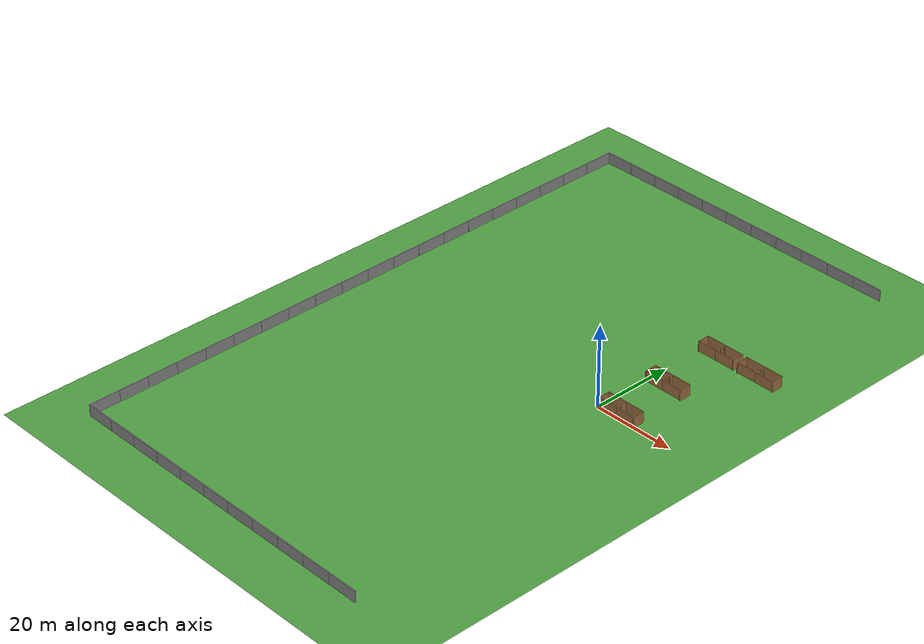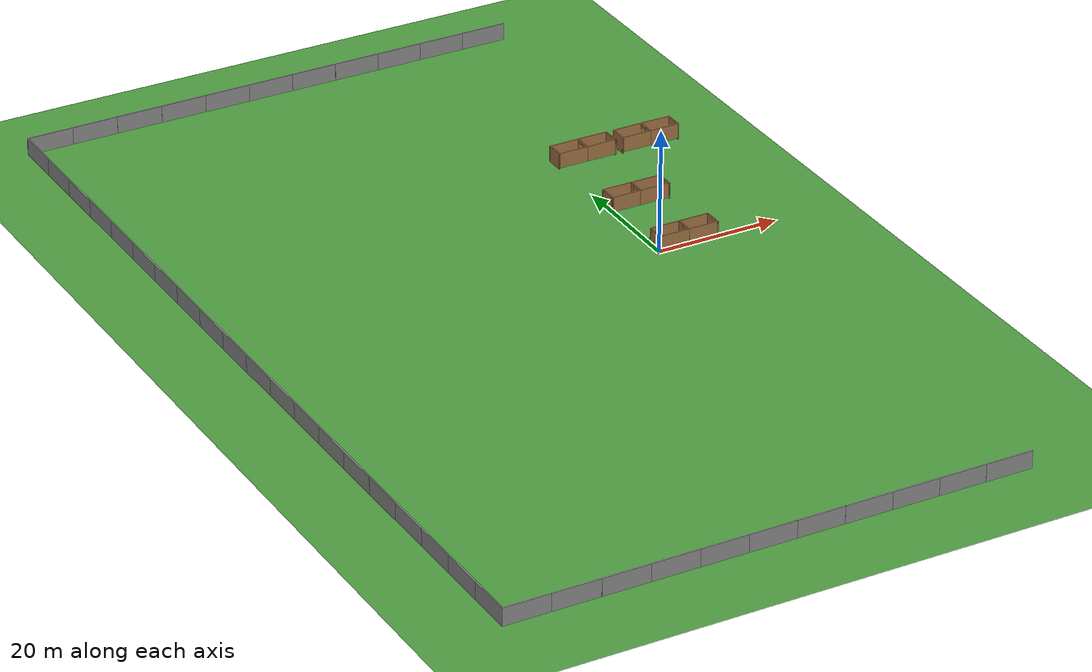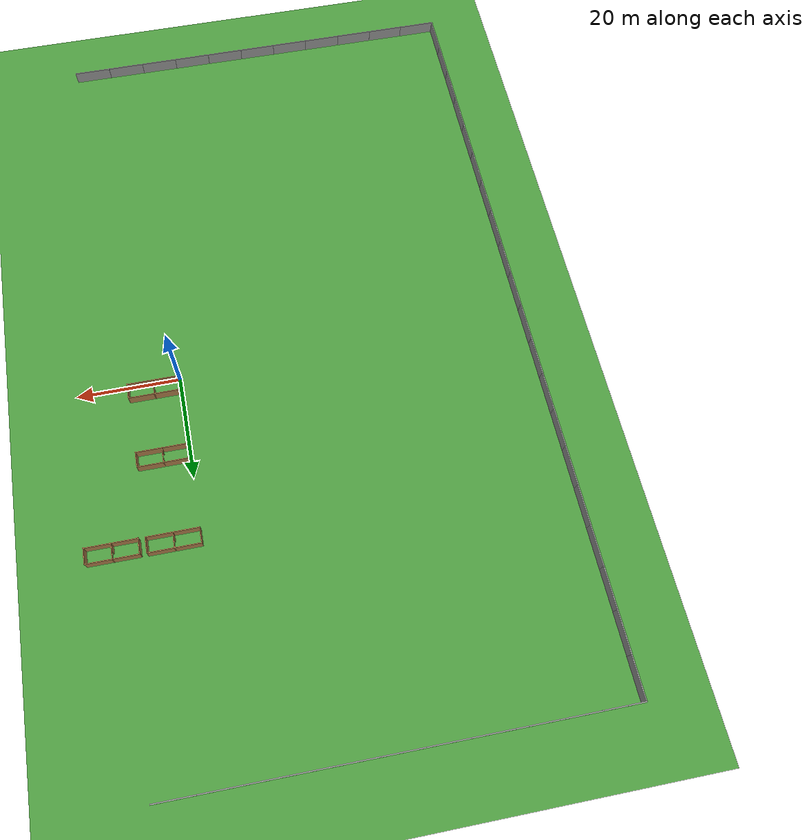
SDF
<sdf version="1.6">
 <world name="default">
  <model name="vrc_driving_terrain">
   <static>1</static>
   <link name="grass_plane">
    <collision name="collision">
     <geometry><plane><normal>0 0 1</normal><size>150 150</size></plane></geometry>
     <surface><friction><ode><mu>0.5</mu><mu2>0.5</mu2></ode></friction></surface>
    </collision>
    <visual name="visual_0">
     <cast_shadows>0</cast_shadows>
     <geometry><plane><normal>0 0 1</normal><size>150 150</size></plane></geometry>
     <material>
      <script>
       <uri>model://forest/vrc_driving_terrain/materials/scripts</uri>
       <uri>model://forest/vrc_driving_terrain/materials/textures</uri>
       <name>vrc/grass</name>
      </script>
     </material>
    </visual>
   </link>
   <pose>6.27224 -2.36963 0 0 -0 0</pose>
  </model>
  <model name="grey_wall_clone_10_clone_clone_clone_11_clone">
   <static>1</static>
   <link name="link">
    <pose>0 0 1.4 0 -0 0</pose>
    <collision name="collision"><geometry><box><size>7.5 0.2 2.8</size></box></geometry></collision>
    <visual name="visual">
     <cast_shadows>0</cast_shadows>
     <geometry><box><size>7.5 0.2 2.8</size></box></geometry>
     <material>
      <script>
       <uri>model://forest/grey_wall/materials/scripts</uri>
       <uri>model://forest/grey_wall/materials/textures</uri>
       <name>vrc/grey_wall</name>
      </script>
     </material>
    </visual>
   </link>
   <pose>-64.823 -77.1867 0 0 -0 0</pose>
  </model>
  <model name="grey_wall_clone_10_clone_clone_clone_11_clone_clone">
   <static>1</static>
   <link name="link">
    <pose>0 0 1.4 0 -0 0</pose>
    <collision name="collision"><geometry><box><size>7.5 0.2 2.8</size></box></geometry></collision>
    <visual name="visual">
     <cast_shadows>0</cast_shadows>
     <geometry><box><size>7.5 0.2 2.8</size></box></geometry>
     <material>
      <script>
       <uri>model://forest/grey_wall/materials/scripts</uri>
       <uri>model://forest/grey_wall/materials/textures</uri>
       <name>vrc/grey_wall</name>
      </script>
     </material>
    </visual>
   </link>
   <pose>-57.5346 -77.2024 0 0 -0 0</pose>
  </model>
  <model name="grey_wall_clone_10_clone_clone_clone_11_clone_clone_0">
   <static>1</static>
   <link name="link">
    <pose>0 0 1.4 0 -0 0</pose>
    <collision name="collision"><geometry><box><size>7.5 0.2 2.8</size></box></geometry></collision>
    <visual name="visual">
     <cast_shadows>0</cast_shadows>
     <geometry><box><size>7.5 0.2 2.8</size></box></geometry>
     <material>
      <script>
       <uri>model://forest/grey_wall/materials/scripts</uri>
       <uri>model://forest/grey_wall/materials/textures</uri>
       <name>vrc/grey_wall</name>
      </script>
     </material>
    </visual>
   </link>
   <pose>-50.026 -77.2083 0 0 -0 0</pose>
  </model>
  <model name="grey_wall_clone_10_clone_clone_clone_11_clone_clone_1">
   <static>1</static>
   <link name="link">
    <pose>0 0 1.4 0 -0 0</pose>
    <collision name="collision"><geometry><box><size>7.5 0.2 2.8</size></box></geometry></collision>
    <visual name="visual">
     <cast_shadows>0</cast_shadows>
     <geometry><box><size>7.5 0.2 2.8</size></box></geometry>
     <material>
      <script>
       <uri>model://forest/grey_wall/materials/scripts</uri>
       <uri>model://forest/grey_wall/materials/textures</uri>
       <name>vrc/grey_wall</name>
      </script>
     </material>
    </visual>
   </link>
   <pose>-42.5276 -77.1982 0 0 -0 0</pose>
  </model>
  <model name="grey_wall_clone_10_clone_clone_clone_11_clone_clone_2">
   <static>1</static>
   <link name="link">
    <pose>0 0 1.4 0 -0 0</pose>
    <collision name="collision"><geometry><box><size>7.5 0.2 2.8</size></box></geometry></collision>
    <visual name="visual">
     <cast_shadows>0</cast_shadows>
     <geometry><box><size>7.5 0.2 2.8</size></box></geometry>
     <material>
      <script>
       <uri>model://forest/grey_wall/materials/scripts</uri>
       <uri>model://forest/grey_wall/materials/textures</uri>
       <name>vrc/grey_wall</name>
      </script>
     </material>
    </visual>
   </link>
   <pose>-35.0175 -77.2078 0 0 -0 0</pose>
  </model>
  <model name="grey_wall_clone_10_clone_clone_clone_11_clone_clone_3">
   <static>1</static>
   <link name="link">
    <pose>0 0 1.4 0 -0 0</pose>
    <collision name="collision"><geometry><box><size>7.5 0.2 2.8</size></box></geometry></collision>
    <visual name="visual">
     <cast_shadows>0</cast_shadows>
     <geometry><box><size>7.5 0.2 2.8</size></box></geometry>
     <material>
      <script>
       <uri>model://forest/grey_wall/materials/scripts</uri>
       <uri>model://forest/grey_wall/materials/textures</uri>
       <name>vrc/grey_wall</name>
      </script>
     </material>
    </visual>
   </link>
   <pose>-27.5544 -77.2087 0 0 -0 0</pose>
  </model>
  <model name="grey_wall_clone_10_clone_clone_clone_11_clone_clone_4">
   <static>1</static>
   <link name="link">
    <pose>0 0 1.4 0 -0 0</pose>
    <collision name="collision"><geometry><box><size>7.5 0.2 2.8</size></box></geometry></collision>
    <visual name="visual">
     <cast_shadows>0</cast_shadows>
     <geometry><box><size>7.5 0.2 2.8</size></box></geometry>
     <material>
      <script>
       <uri>model://forest/grey_wall/materials/scripts</uri>
       <uri>model://forest/grey_wall/materials/textures</uri>
       <name>vrc/grey_wall</name>
      </script>
     </material>
    </visual>
   </link>
   <pose>-20.0557 -77.2142 0 0 -0 0</pose>
  </model>
  <model name="grey_wall_clone_10_clone_clone_clone_11_clone_clone_5">
   <static>1</static>
   <link name="link">
    <pose>0 0 1.4 0 -0 0</pose>
    <collision name="collision"><geometry><box><size>7.5 0.2 2.8</size></box></geometry></collision>
    <visual name="visual">
     <cast_shadows>0</cast_shadows>
     <geometry><box><size>7.5 0.2 2.8</size></box></geometry>
     <material>
      <script>
       <uri>model://forest/grey_wall/materials/scripts</uri>
       <uri>model://forest/grey_wall/materials/textures</uri>
       <name>vrc/grey_wall</name>
      </script>
     </material>
    </visual>
   </link>
   <pose>-12.5467 -77.224 0 0 -0 0</pose>
  </model>
  <model name="grey_wall_clone_10_clone_clone_clone_11_clone_clone_6">
   <static>1</static>
   <link name="link">
    <pose>0 0 1.4 0 -0 0</pose>
    <collision name="collision"><geometry><box><size>7.5 0.2 2.8</size></box></geometry></collision>
    <visual name="visual">
     <cast_shadows>0</cast_shadows>
     <geometry><box><size>7.5 0.2 2.8</size></box></geometry>
     <material>
      <script>
       <uri>model://forest/grey_wall/materials/scripts</uri>
       <uri>model://forest/grey_wall/materials/textures</uri>
       <name>vrc/grey_wall</name>
      </script>
     </material>
    </visual>
   </link>
   <pose>-5.04952 -77.2253 0 0 -0 0</pose>
  </model>
  <model name="grey_wall_clone_10_clone_clone_clone_11_clone_clone_7">
   <static>1</static>
   <link name="link">
    <pose>0 0 1.4 0 -0 0</pose>
    <collision name="collision"><geometry><box><size>7.5 0.2 2.8</size></box></geometry></collision>
    <visual name="visual">
     <cast_shadows>0</cast_shadows>
     <geometry><box><size>7.5 0.2 2.8</size></box></geometry>
     <material>
      <script>
       <uri>model://forest/grey_wall/materials/scripts</uri>
       <uri>model://forest/grey_wall/materials/textures</uri>
       <name>vrc/grey_wall</name>
      </script>
     </material>
    </visual>
   </link>
   <pose>2.45064 -77.2385 0 0 -0 0</pose>
  </model>
  <model name="grey_wall_clone_10_clone_clone_clone_11_clone_clone_8">
   <static>1</static>
   <link name="link">
    <pose>0 0 1.4 0 -0 0</pose>
    <collision name="collision"><geometry><box><size>7.5 0.2 2.8</size></box></geometry></collision>
    <visual name="visual">
     <cast_shadows>0</cast_shadows>
     <geometry><box><size>7.5 0.2 2.8</size></box></geometry>
     <material>
      <script>
       <uri>model://forest/grey_wall/materials/scripts</uri>
       <uri>model://forest/grey_wall/materials/textures</uri>
       <name>vrc/grey_wall</name>
      </script>
     </material>
    </visual>
   </link>
   <pose>9.9578 -77.2456 0 0 -0 0</pose>
  </model>
  <model name="grey_wall_clone_10_clone_clone_9">
   <static>1</static>
   <link name="link">
    <pose>0 0 1.4 0 -0 0</pose>
    <collision name="collision"><geometry><box><size>7.5 0.2 2.8</size></box></geometry></collision>
    <visual name="visual">
     <cast_shadows>0</cast_shadows>
     <geometry><box><size>7.5 0.2 2.8</size></box></geometry>
     <material>
      <script>
       <uri>model://forest/grey_wall/materials/scripts</uri>
       <uri>model://forest/grey_wall/materials/textures</uri>
       <name>vrc/grey_wall</name>
      </script>
     </material>
    </visual>
   </link>
   <pose>9.8792 72.6386 0 0 -0 0</pose>
  </model>
  <model name="grey_wall_clone_10_clone_clone_10">
   <static>1</static>
   <link name="link">
    <pose>0 0 1.4 0 -0 0</pose>
    <collision name="collision"><geometry><box><size>7.5 0.2 2.8</size></box></geometry></collision>
    <visual name="visual">
     <cast_shadows>0</cast_shadows>
     <geometry><box><size>7.5 0.2 2.8</size></box></geometry>
     <material>
      <script>
       <uri>model://forest/grey_wall/materials/scripts</uri>
       <uri>model://forest/grey_wall/materials/textures</uri>
       <name>vrc/grey_wall</name>
      </script>
     </material>
    </visual>
   </link>
   <pose>2.37975 72.635 0 0 -0 0</pose>
  </model>
  <model name="grey_wall_clone_10_clone_clone_11">
   <static>1</static>
   <link name="link">
    <pose>0 0 1.4 0 -0 0</pose>
    <collision name="collision"><geometry><box><size>7.5 0.2 2.8</size></box></geometry></collision>
    <visual name="visual">
     <cast_shadows>0</cast_shadows>
     <geometry><box><size>7.5 0.2 2.8</size></box></geometry>
     <material>
      <script>
       <uri>model://forest/grey_wall/materials/scripts</uri>
       <uri>model://forest/grey_wall/materials/textures</uri>
       <name>vrc/grey_wall</name>
      </script>
     </material>
    </visual>
   </link>
   <pose>-5.09788 72.6331 0 0 -0 0</pose>
  </model>
  <model name="grey_wall_clone_10_clone_clone_12">
   <static>1</static>
   <link name="link">
    <pose>0 0 1.4 0 -0 0</pose>
    <collision name="collision"><geometry><box><size>7.5 0.2 2.8</size></box></geometry></collision>
    <visual name="visual">
     <cast_shadows>0</cast_shadows>
     <geometry><box><size>7.5 0.2 2.8</size></box></geometry>
     <material>
      <script>
       <uri>model://forest/grey_wall/materials/scripts</uri>
       <uri>model://forest/grey_wall/materials/textures</uri>
       <name>vrc/grey_wall</name>
      </script>
     </material>
    </visual>
   </link>
   <pose>-12.6061 72.6425 0 0 -0 0</pose>
  </model>
  <model name="grey_wall_clone_10_clone_clone_13">
   <static>1</static>
   <link name="link">
    <pose>0 0 1.4 0 -0 0</pose>
    <collision name="collision"><geometry><box><size>7.5 0.2 2.8</size></box></geometry></collision>
    <visual name="visual">
     <cast_shadows>0</cast_shadows>
     <geometry><box><size>7.5 0.2 2.8</size></box></geometry>
     <material>
      <script>
       <uri>model://forest/grey_wall/materials/scripts</uri>
       <uri>model://forest/grey_wall/materials/textures</uri>
       <name>vrc/grey_wall</name>
      </script>
     </material>
    </visual>
   </link>
   <pose>-20.1193 72.6527 0 0 -0 0</pose>
  </model>
  <model name="grey_wall_clone_10_clone_clone_14">
   <static>1</static>
   <link name="link">
    <pose>0 0 1.4 0 -0 0</pose>
    <collision name="collision"><geometry><box><size>7.5 0.2 2.8</size></box></geometry></collision>
    <visual name="visual">
     <cast_shadows>0</cast_shadows>
     <geometry><box><size>7.5 0.2 2.8</size></box></geometry>
     <material>
      <script>
       <uri>model://forest/grey_wall/materials/scripts</uri>
       <uri>model://forest/grey_wall/materials/textures</uri>
       <name>vrc/grey_wall</name>
      </script>
     </material>
    </visual>
   </link>
   <pose>-27.6199 72.6558 0 0 -0 0</pose>
  </model>
  <model name="grey_wall_clone_10_clone_clone_15">
   <static>1</static>
   <link name="link">
    <pose>0 0 1.4 0 -0 0</pose>
    <collision name="collision"><geometry><box><size>7.5 0.2 2.8</size></box></geometry></collision>
    <visual name="visual">
     <cast_shadows>0</cast_shadows>
     <geometry><box><size>7.5 0.2 2.8</size></box></geometry>
     <material>
      <script>
       <uri>model://forest/grey_wall/materials/scripts</uri>
       <uri>model://forest/grey_wall/materials/textures</uri>
       <name>vrc/grey_wall</name>
      </script>
     </material>
    </visual>
   </link>
   <pose>-35.1125 72.6503 0 0 -0 0</pose>
  </model>
  <model name="grey_wall_clone_10_clone_clone_16">
   <static>1</static>
   <link name="link">
    <pose>0 0 1.4 0 -0 0</pose>
    <collision name="collision"><geometry><box><size>7.5 0.2 2.8</size></box></geometry></collision>
    <visual name="visual">
     <cast_shadows>0</cast_shadows>
     <geometry><box><size>7.5 0.2 2.8</size></box></geometry>
     <material>
      <script>
       <uri>model://forest/grey_wall/materials/scripts</uri>
       <uri>model://forest/grey_wall/materials/textures</uri>
       <name>vrc/grey_wall</name>
      </script>
     </material>
    </visual>
   </link>
   <pose>-42.606 72.6465 0 0 -0 0</pose>
  </model>
  <model name="grey_wall_clone_10_clone_clone_17">
   <static>1</static>
   <link name="link">
    <pose>0 0 1.4 0 -0 0</pose>
    <collision name="collision"><geometry><box><size>7.5 0.2 2.8</size></box></geometry></collision>
    <visual name="visual">
     <cast_shadows>0</cast_shadows>
     <geometry><box><size>7.5 0.2 2.8</size></box></geometry>
     <material>
      <script>
       <uri>model://forest/grey_wall/materials/scripts</uri>
       <uri>model://forest/grey_wall/materials/textures</uri>
       <name>vrc/grey_wall</name>
      </script>
     </material>
    </visual>
   </link>
   <pose>-50.1127 72.6522 0 0 -0 0</pose>
  </model>
  <model name="grey_wall_clone_10_clone_clone_18">
   <static>1</static>
   <link name="link">
    <pose>0 0 1.4 0 -0 0</pose>
    <collision name="collision"><geometry><box><size>7.5 0.2 2.8</size></box></geometry></collision>
    <visual name="visual">
     <cast_shadows>0</cast_shadows>
     <geometry><box><size>7.5 0.2 2.8</size></box></geometry>
     <material>
      <script>
       <uri>model://forest/grey_wall/materials/scripts</uri>
       <uri>model://forest/grey_wall/materials/textures</uri>
       <name>vrc/grey_wall</name>
      </script>
     </material>
    </visual>
   </link>
   <pose>-57.6217 72.6499 0 0 -0 0</pose>
  </model>
  <model name="grey_wall_clone_10_clone_clone_19">
   <static>1</static>
   <link name="link">
    <pose>0 0 1.4 0 -0 0</pose>
    <collision name="collision"><geometry><box><size>7.5 0.2 2.8</size></box></geometry></collision>
    <visual name="visual">
     <cast_shadows>0</cast_shadows>
     <geometry><box><size>7.5 0.2 2.8</size></box></geometry>
     <material>
      <script>
       <uri>model://forest/grey_wall/materials/scripts</uri>
       <uri>model://forest/grey_wall/materials/textures</uri>
       <name>vrc/grey_wall</name>
      </script>
     </material>
    </visual>
   </link>
   <pose>-65.1107 72.6364 0 0 -0 0</pose>
  </model>
  <model name="grey_wall_clone_10_clone_0_clone_5_clone_12_clone">
   <static>1</static>
   <link name="link">
    <pose>0 0 1.4 0 -0 0</pose>
    <collision name="collision"><geometry><box><size>7.5 0.2 2.8</size></box></geometry></collision>
    <visual name="visual">
     <cast_shadows>0</cast_shadows>
     <geometry><box><size>7.5 0.2 2.8</size></box></geometry>
     <material>
      <script>
       <uri>model://forest/grey_wall/materials/scripts</uri>
       <uri>model://forest/grey_wall/materials/textures</uri>
       <name>vrc/grey_wall</name>
      </script>
     </material>
    </visual>
   </link>
   <pose>-68.7572 68.7982 0 0 0 -1.56932</pose>
  </model>
  <model name="grey_wall_clone_10_clone_0_clone_5_clone_12_clone_0">
   <static>1</static>
   <link name="link">
    <pose>0 0 1.4 0 -0 0</pose>
    <collision name="collision"><geometry><box><size>7.5 0.2 2.8</size></box></geometry></collision>
    <visual name="visual">
     <cast_shadows>0</cast_shadows>
     <geometry><box><size>7.5 0.2 2.8</size></box></geometry>
     <material>
      <script>
       <uri>model://forest/grey_wall/materials/scripts</uri>
       <uri>model://forest/grey_wall/materials/textures</uri>
       <name>vrc/grey_wall</name>
      </script>
     </material>
    </visual>
   </link>
   <pose>-68.7575 61.2964 0 0 0 -1.56932</pose>
  </model>
  <model name="grey_wall_clone_10_clone_0_clone_5_clone_12_clone_1">
   <static>1</static>
   <link name="link">
    <pose>0 0 1.4 0 -0 0</pose>
    <collision name="collision"><geometry><box><size>7.5 0.2 2.8</size></box></geometry></collision>
    <visual name="visual">
     <cast_shadows>0</cast_shadows>
     <geometry><box><size>7.5 0.2 2.8</size></box></geometry>
     <material>
      <script>
       <uri>model://forest/grey_wall/materials/scripts</uri>
       <uri>model://forest/grey_wall/materials/textures</uri>
       <name>vrc/grey_wall</name>
      </script>
     </material>
    </visual>
   </link>
   <pose>-68.7526 53.7973 0 0 0 -1.56932</pose>
  </model>
  <model name="grey_wall_clone_10_clone_0_clone_5_clone_12_clone_2">
   <static>1</static>
   <link name="link">
    <pose>0 0 1.4 0 -0 0</pose>
    <collision name="collision"><geometry><box><size>7.5 0.2 2.8</size></box></geometry></collision>
    <visual name="visual">
     <cast_shadows>0</cast_shadows>
     <geometry><box><size>7.5 0.2 2.8</size></box></geometry>
     <material>
      <script>
       <uri>model://forest/grey_wall/materials/scripts</uri>
       <uri>model://forest/grey_wall/materials/textures</uri>
       <name>vrc/grey_wall</name>
      </script>
     </material>
    </visual>
   </link>
   <pose>-68.7342 46.3034 0 0 0 -1.56932</pose>
  </model>
  <model name="grey_wall_clone_10_clone_0_clone_5_clone_12_clone_3">
   <static>1</static>
   <link name="link">
    <pose>0 0 1.4 0 -0 0</pose>
    <collision name="collision"><geometry><box><size>7.5 0.2 2.8</size></box></geometry></collision>
    <visual name="visual">
     <cast_shadows>0</cast_shadows>
     <geometry><box><size>7.5 0.2 2.8</size></box></geometry>
     <material>
      <script>
       <uri>model://forest/grey_wall/materials/scripts</uri>
       <uri>model://forest/grey_wall/materials/textures</uri>
       <name>vrc/grey_wall</name>
      </script>
     </material>
    </visual>
   </link>
   <pose>-68.7287 38.8101 0 0 0 -1.56932</pose>
  </model>
  <model name="grey_wall_clone_10_clone_0_clone_5_clone_12_clone_4">
   <static>1</static>
   <link name="link">
    <pose>0 0 1.4 0 -0 0</pose>
    <collision name="collision"><geometry><box><size>7.5 0.2 2.8</size></box></geometry></collision>
    <visual name="visual">
     <cast_shadows>0</cast_shadows>
     <geometry><box><size>7.5 0.2 2.8</size></box></geometry>
     <material>
      <script>
       <uri>model://forest/grey_wall/materials/scripts</uri>
       <uri>model://forest/grey_wall/materials/textures</uri>
       <name>vrc/grey_wall</name>
      </script>
     </material>
    </visual>
   </link>
   <pose>-68.7201 31.3023 0 0 0 -1.56932</pose>
  </model>
  <model name="grey_wall_clone_10_clone_0_clone_5_clone_12_clone_5">
   <static>1</static>
   <link name="link">
    <pose>0 0 1.4 0 -0 0</pose>
    <collision name="collision"><geometry><box><size>7.5 0.2 2.8</size></box></geometry></collision>
    <visual name="visual">
     <cast_shadows>0</cast_shadows>
     <geometry><box><size>7.5 0.2 2.8</size></box></geometry>
     <material>
      <script>
       <uri>model://forest/grey_wall/materials/scripts</uri>
       <uri>model://forest/grey_wall/materials/textures</uri>
       <name>vrc/grey_wall</name>
      </script>
     </material>
    </visual>
   </link>
   <pose>-68.7145 23.7907 0 0 0 -1.56932</pose>
  </model>
  <model name="grey_wall_clone_10_clone_0_clone_5_clone_12_clone_6">
   <static>1</static>
   <link name="link">
    <pose>0 0 1.4 0 -0 0</pose>
    <collision name="collision"><geometry><box><size>7.5 0.2 2.8</size></box></geometry></collision>
    <visual name="visual">
     <cast_shadows>0</cast_shadows>
     <geometry><box><size>7.5 0.2 2.8</size></box></geometry>
     <material>
      <script>
       <uri>model://forest/grey_wall/materials/scripts</uri>
       <uri>model://forest/grey_wall/materials/textures</uri>
       <name>vrc/grey_wall</name>
      </script>
     </material>
    </visual>
   </link>
   <pose>-68.6998 16.2892 0 0 0 -1.56932</pose>
  </model>
  <model name="grey_wall_clone_10_clone_0_clone_5_clone_12_clone_7">
   <static>1</static>
   <link name="link">
    <pose>0 0 1.4 0 -0 0</pose>
    <collision name="collision"><geometry><box><size>7.5 0.2 2.8</size></box></geometry></collision>
    <visual name="visual">
     <cast_shadows>0</cast_shadows>
     <geometry><box><size>7.5 0.2 2.8</size></box></geometry>
     <material>
      <script>
       <uri>model://forest/grey_wall/materials/scripts</uri>
       <uri>model://forest/grey_wall/materials/textures</uri>
       <name>vrc/grey_wall</name>
      </script>
     </material>
    </visual>
   </link>
   <pose>-68.6952 8.77311 0 0 0 -1.56932</pose>
  </model>
  <model name="grey_wall_clone_10_clone_0_clone_5_clone_12_clone_8">
   <static>1</static>
   <link name="link">
    <pose>0 0 1.4 0 -0 0</pose>
    <collision name="collision"><geometry><box><size>7.5 0.2 2.8</size></box></geometry></collision>
    <visual name="visual">
     <cast_shadows>0</cast_shadows>
     <geometry><box><size>7.5 0.2 2.8</size></box></geometry>
     <material>
      <script>
       <uri>model://forest/grey_wall/materials/scripts</uri>
       <uri>model://forest/grey_wall/materials/textures</uri>
       <name>vrc/grey_wall</name>
      </script>
     </material>
    </visual>
   </link>
   <pose>-68.6796 1.26105 0 0 0 -1.56932</pose>
  </model>
  <model name="grey_wall_clone_10_clone_0_clone_5_clone_12_clone_9">
   <static>1</static>
   <link name="link">
    <pose>0 0 1.4 0 -0 0</pose>
    <collision name="collision"><geometry><box><size>7.5 0.2 2.8</size></box></geometry></collision>
    <visual name="visual">
     <cast_shadows>0</cast_shadows>
     <geometry><box><size>7.5 0.2 2.8</size></box></geometry>
     <material>
      <script>
       <uri>model://forest/grey_wall/materials/scripts</uri>
       <uri>model://forest/grey_wall/materials/textures</uri>
       <name>vrc/grey_wall</name>
      </script>
     </material>
    </visual>
   </link>
   <pose>-68.6605 -6.23997 0 0 0 -1.56932</pose>
  </model>
  <model name="grey_wall_clone_10_clone_0_clone_5_clone_12_clone_10">
   <static>1</static>
   <link name="link">
    <pose>0 0 1.4 0 -0 0</pose>
    <collision name="collision"><geometry><box><size>7.5 0.2 2.8</size></box></geometry></collision>
    <visual name="visual">
     <cast_shadows>0</cast_shadows>
     <geometry><box><size>7.5 0.2 2.8</size></box></geometry>
     <material>
      <script>
       <uri>model://forest/grey_wall/materials/scripts</uri>
       <uri>model://forest/grey_wall/materials/textures</uri>
       <name>vrc/grey_wall</name>
      </script>
     </material>
    </visual>
   </link>
   <pose>-68.6471 -13.729 0 0 0 -1.56932</pose>
  </model>
  <model name="grey_wall_clone_10_clone_0_clone_5_clone_12_clone_11">
   <static>1</static>
   <link name="link">
    <pose>0 0 1.4 0 -0 0</pose>
    <collision name="collision"><geometry><box><size>7.5 0.2 2.8</size></box></geometry></collision>
    <visual name="visual">
     <cast_shadows>0</cast_shadows>
     <geometry><box><size>7.5 0.2 2.8</size></box></geometry>
     <material>
      <script>
       <uri>model://forest/grey_wall/materials/scripts</uri>
       <uri>model://forest/grey_wall/materials/textures</uri>
       <name>vrc/grey_wall</name>
      </script>
     </material>
    </visual>
   </link>
   <pose>-68.6449 -21.2378 0 0 0 -1.56932</pose>
  </model>
  <model name="grey_wall_clone_10_clone_0_clone_5_clone_12_clone_12">
   <static>1</static>
   <link name="link">
    <pose>0 0 1.4 0 -0 0</pose>
    <collision name="collision"><geometry><box><size>7.5 0.2 2.8</size></box></geometry></collision>
    <visual name="visual">
     <cast_shadows>0</cast_shadows>
     <geometry><box><size>7.5 0.2 2.8</size></box></geometry>
     <material>
      <script>
       <uri>model://forest/grey_wall/materials/scripts</uri>
       <uri>model://forest/grey_wall/materials/textures</uri>
       <name>vrc/grey_wall</name>
      </script>
     </material>
    </visual>
   </link>
   <pose>-68.6227 -28.7312 0 0 0 -1.56932</pose>
  </model>
  <model name="grey_wall_clone_10_clone_0_clone_5_clone_12_clone_13">
   <static>1</static>
   <link name="link">
    <pose>0 0 1.4 0 -0 0</pose>
    <collision name="collision"><geometry><box><size>7.5 0.2 2.8</size></box></geometry></collision>
    <visual name="visual">
     <cast_shadows>0</cast_shadows>
     <geometry><box><size>7.5 0.2 2.8</size></box></geometry>
     <material>
      <script>
       <uri>model://forest/grey_wall/materials/scripts</uri>
       <uri>model://forest/grey_wall/materials/textures</uri>
       <name>vrc/grey_wall</name>
      </script>
     </material>
    </visual>
   </link>
   <pose>-68.621 -36.2363 0 0 0 -1.56932</pose>
  </model>
  <model name="grey_wall_clone_10_clone_0_clone_5_clone_12_clone_14">
   <static>1</static>
   <link name="link">
    <pose>0 0 1.4 0 -0 0</pose>
    <collision name="collision"><geometry><box><size>7.5 0.2 2.8</size></box></geometry></collision>
    <visual name="visual">
     <cast_shadows>0</cast_shadows>
     <geometry><box><size>7.5 0.2 2.8</size></box></geometry>
     <material>
      <script>
       <uri>model://forest/grey_wall/materials/scripts</uri>
       <uri>model://forest/grey_wall/materials/textures</uri>
       <name>vrc/grey_wall</name>
      </script>
     </material>
    </visual>
   </link>
   <pose>-68.5988 -43.7335 0 0 0 -1.56932</pose>
  </model>
  <model name="grey_wall_clone_10_clone_0_clone_5_clone_12_clone_15">
   <static>1</static>
   <link name="link">
    <pose>0 0 1.4 0 -0 0</pose>
    <collision name="collision"><geometry><box><size>7.5 0.2 2.8</size></box></geometry></collision>
    <visual name="visual">
     <cast_shadows>0</cast_shadows>
     <geometry><box><size>7.5 0.2 2.8</size></box></geometry>
     <material>
      <script>
       <uri>model://forest/grey_wall/materials/scripts</uri>
       <uri>model://forest/grey_wall/materials/textures</uri>
       <name>vrc/grey_wall</name>
      </script>
     </material>
    </visual>
   </link>
   <pose>-68.5877 -51.2413 0 0 0 -1.56932</pose>
  </model>
  <model name="grey_wall_clone_10_clone_0_clone_5_clone_12_clone_16">
   <static>1</static>
   <link name="link">
    <pose>0 0 1.4 0 -0 0</pose>
    <collision name="collision"><geometry><box><size>7.5 0.2 2.8</size></box></geometry></collision>
    <visual name="visual">
     <cast_shadows>0</cast_shadows>
     <geometry><box><size>7.5 0.2 2.8</size></box></geometry>
     <material>
      <script>
       <uri>model://forest/grey_wall/materials/scripts</uri>
       <uri>model://forest/grey_wall/materials/textures</uri>
       <name>vrc/grey_wall</name>
      </script>
     </material>
    </visual>
   </link>
   <pose>-68.5839 -58.7528 0 0 0 -1.56932</pose>
  </model>
  <model name="grey_wall_clone_10_clone_0_clone_5_clone_12_clone_17">
   <static>1</static>
   <link name="link">
    <pose>0 0 1.4 0 -0 0</pose>
    <collision name="collision"><geometry><box><size>7.5 0.2 2.8</size></box></geometry></collision>
    <visual name="visual">
     <cast_shadows>0</cast_shadows>
     <geometry><box><size>7.5 0.2 2.8</size></box></geometry>
     <material>
      <script>
       <uri>model://forest/grey_wall/materials/scripts</uri>
       <uri>model://forest/grey_wall/materials/textures</uri>
       <name>vrc/grey_wall</name>
      </script>
     </material>
    </visual>
   </link>
   <pose>-68.5608 -66.2516 0 0 0 -1.56932</pose>
  </model>
  <model name="grey_wall_clone_10_clone_0_clone_5_clone_12_clone_18">
   <static>1</static>
   <link name="link">
    <pose>0 0 1.4 0 -0 0</pose>
    <collision name="collision"><geometry><box><size>7.5 0.2 2.8</size></box></geometry></collision>
    <visual name="visual">
     <cast_shadows>0</cast_shadows>
     <geometry><box><size>7.5 0.2 2.8</size></box></geometry>
     <material>
      <script>
       <uri>model://forest/grey_wall/materials/scripts</uri>
       <uri>model://forest/grey_wall/materials/textures</uri>
       <name>vrc/grey_wall</name>
      </script>
     </material>
    </visual>
   </link>
   <pose>-68.5453 -73.5293 0 0 0 -1.56932</pose>
  </model>
  <model name="right140_0">
   <pose>5.05042 1.93611 0 0 -0 0</pose>
   <link name="Wall_11">
    <collision name="Wall_11_Collision">
     <geometry><box><size>5 0.15 2.5</size></box></geometry>
     <pose>0 0 1.25 0 -0 0</pose>
    </collision>
    <visual name="Wall_11_Visual">
     <pose>0 0 1.25 0 -0 0</pose>
     <geometry><box><size>5 0.15 2.5</size></box></geometry>
     <material>
      <script><uri>file://media/materials/scripts/gazebo.material</uri><name>Gazebo/Wood</name></script>
      <ambient>1 1 1 1</ambient>
     </material>
     <meta><layer>0</layer></meta>
    </visual>
    <pose>-2.425 -1.83058 0 0 -0 3.14159</pose>
   </link>
   <link name="Wall_5">
    <collision name="Wall_5_Collision">
     <geometry><box><size>5 0.15 2.5</size></box></geometry>
     <pose>0 0 1.25 0 -0 0</pose>
    </collision>
    <visual name="Wall_5_Visual">
     <pose>0 0 1.25 0 -0 0</pose>
     <geometry><box><size>5 0.15 2.5</size></box></geometry>
     <material>
      <script><uri>file://media/materials/scripts/gazebo.material</uri><name>Gazebo/Wood</name></script>
      <ambient>1 1 1 1</ambient>
     </material>
     <meta><layer>0</layer></meta>
    </visual>
    <pose>-2.425 1.01942 0 0 -0 0</pose>
   </link>
   <link name="Wall_6">
    <pose>0 -0.405576 0 0 -0 -1.5708</pose>
    <visual name="Wall_6_Visual_0">
     <pose>-0.7725 0 1.25 0 -0 0</pose>
     <geometry><box><size>1.455 0.15 2.5</size></box></geometry>
     <material>
      <script><uri>file://media/materials/scripts/gazebo.material</uri><name>Gazebo/Wood</name></script>
      <ambient>1 1 1 1</ambient>
     </material>
     <meta><layer>0</layer></meta>
    </visual>
    <collision name="Wall_6_Collision_0">
     <geometry><box><size>1.455 0.15 2.5</size></box></geometry>
     <pose>-0.7725 0 1.25 0 -0 0</pose>
    </collision>
    <visual name="Wall_6_Visual_1">
     <pose>1.4275 0 1.25 0 -0 0</pose>
     <geometry><box><size>0.145 0.15 2.5</size></box></geometry>
     <material>
      <script><uri>file://media/materials/scripts/gazebo.material</uri><name>Gazebo/Wood</name></script>
      <ambient>1 1 1 1</ambient>
     </material>
     <meta><layer>0</layer></meta>
    </visual>
    <collision name="Wall_6_Collision_1">
     <geometry><box><size>0.145 0.15 2.5</size></box></geometry>
     <pose>1.4275 0 1.25 0 -0 0</pose>
    </collision>
    <visual name="Wall_6_Visual_2">
     <pose>0.655 0 2.25 0 -0 0</pose>
     <geometry><box><size>1.4 0.15 0.5</size></box></geometry>
     <material>
      <script><uri>file://media/materials/scripts/gazebo.material</uri><name>Gazebo/Wood</name></script>
      <ambient>1 1 1 1</ambient>
     </material>
     <meta><layer>0</layer></meta>
    </visual>
    <collision name="Wall_6_Collision_2">
     <geometry><box><size>1.4 0.15 0.5</size></box></geometry>
     <pose>0.655 0 2.25 0 -0 0</pose>
    </collision>
   </link>
   <link name="Wall_7">
    <collision name="Wall_7_Collision">
     <geometry><box><size>5 0.15 2.5</size></box></geometry>
     <pose>0 0 1.25 0 -0 0</pose>
    </collision>
    <visual name="Wall_7_Visual">
     <pose>0 0 1.25 0 -0 0</pose>
     <geometry><box><size>5 0.15 2.5</size></box></geometry>
     <material>
      <script><uri>file://media/materials/scripts/gazebo.material</uri><name>Gazebo/Wood</name></script>
      <ambient>1 1 1 1</ambient>
     </material>
     <meta><layer>0</layer></meta>
    </visual>
    <pose>2.425 -1.83058 0 0 -0 0</pose>
   </link>
   <link name="Wall_9">
    <collision name="Wall_9_Collision">
     <geometry><box><size>5 0.15 2.5</size></box></geometry>
     <pose>0 0 1.25 0 -0 0</pose>
    </collision>
    <visual name="Wall_9_Visual">
     <pose>0 0 1.25 0 -0 0</pose>
     <geometry><box><size>5 0.15 2.5</size></box></geometry>
     <material>
      <script><uri>file://media/materials/scripts/gazebo.material</uri><name>Gazebo/Wood</name></script>
      <ambient>1 1 1 1</ambient>
     </material>
     <meta><layer>0</layer></meta>
    </visual>
    <pose>2.425 1.01942 0 0 -0 0</pose>
   </link>
   <link name="Wall_10">
    <collision name="Wall_10_Collision">
     <geometry><box><size>0.15 3 5</size></box></geometry>
     <pose>-7.25 -1.5 0 0 -0 0</pose>
    </collision>
    <visual name="Wall_10_Visual">
     <pose>-7.25 -1.5 0 0 -0 0</pose>
     <geometry><box><size>0.15 3 5</size></box></geometry>
     <material>
      <script><uri>file://media/materials/scripts/gazebo.material</uri><name>Gazebo/Wood</name></script>
      <ambient>1 1 1 1</ambient>
     </material>
     <meta><layer>0</layer></meta>
    </visual>
    <pose>2.425 1.01942 0 0 -0 0</pose>
   </link>
   <link name="Wall_12">
    <collision name="Wall_12_Collision">
     <geometry><box><size>0.15 3 5</size></box></geometry>
     <pose>2.5 -1.5 0 0 -0 0</pose>
    </collision>
    <visual name="Wall_12_Visual">
     <pose>2.5 -1.5 0 0 -0 0</pose>
     <geometry><box><size>0.15 3 5</size></box></geometry>
     <material>
      <script><uri>file://media/materials/scripts/gazebo.material</uri><name>Gazebo/Wood</name></script>
      <ambient>1 1 1 1</ambient>
     </material>
     <meta><layer>0</layer></meta>
    </visual>
    <pose>2.425 1.01942 0 0 -0 0</pose>
   </link>
   <static>1</static>
  </model>
  <model name="middle140">
   <pose>4.89159 15.7907 0 0 -0 0</pose>
   <link name="Wall_11">
    <collision name="Wall_11_Collision">
     <geometry><box><size>5 0.15 2.5</size></box></geometry>
     <pose>0 0 1.25 0 -0 0</pose>
    </collision>
    <visual name="Wall_11_Visual">
     <pose>0 0 1.25 0 -0 0</pose>
     <geometry><box><size>5 0.15 2.5</size></box></geometry>
     <material>
      <script><uri>file://media/materials/scripts/gazebo.material</uri><name>Gazebo/Wood</name></script>
      <ambient>1 1 1 1</ambient>
     </material>
     <meta><layer>0</layer></meta>
    </visual>
    <pose>-2.425 -1.83058 0 0 -0 3.14159</pose>
   </link>
   <link name="Wall_5">
    <collision name="Wall_5_Collision">
     <geometry><box><size>5 0.15 2.5</size></box></geometry>
     <pose>0 0 1.25 0 -0 0</pose>
    </collision>
    <visual name="Wall_5_Visual">
     <pose>0 0 1.25 0 -0 0</pose>
     <geometry><box><size>5 0.15 2.5</size></box></geometry>
     <material>
      <script><uri>file://media/materials/scripts/gazebo.material</uri><name>Gazebo/Wood</name></script>
      <ambient>1 1 1 1</ambient>
     </material>
     <meta><layer>0</layer></meta>
    </visual>
    <pose>-2.425 1.01942 0 0 -0 0</pose>
   </link>
   <link name="Wall_6">
    <pose>0 -0.405576 0 0 -0 -1.5708</pose>
    <visual name="Wall_6_Visual_0">
     <pose>-1.1025 0 1.25 0 -0 0</pose>
     <geometry><box><size>0.795 0.15 2.5</size></box></geometry>
     <material>
      <script><uri>file://media/materials/scripts/gazebo.material</uri><name>Gazebo/Wood</name></script>
      <ambient>1 1 1 1</ambient>
     </material>
     <meta><layer>0</layer></meta>
    </visual>
    <collision name="Wall_6_Collision_0">
     <geometry><box><size>0.795 0.15 2.5</size></box></geometry>
     <pose>-1.1025 0 1.25 0 -0 0</pose>
    </collision>
    <visual name="Wall_6_Visual_1">
     <pose>1.0975 0 1.25 0 -0 0</pose>
     <geometry><box><size>0.805 0.15 2.5</size></box></geometry>
     <material>
      <script><uri>file://media/materials/scripts/gazebo.material</uri><name>Gazebo/Wood</name></script>
      <ambient>1 1 1 1</ambient>
     </material>
     <meta><layer>0</layer></meta>
    </visual>
    <collision name="Wall_6_Collision_1">
     <geometry><box><size>0.805 0.15 2.5</size></box></geometry>
     <pose>1.0975 0 1.25 0 -0 0</pose>
    </collision>
    <visual name="Wall_6_Visual_2">
     <pose>-0.005 0 2.25 0 -0 0</pose>
     <geometry><box><size>1.4 0.15 0.5</size></box></geometry>
     <material>
      <script><uri>file://media/materials/scripts/gazebo.material</uri><name>Gazebo/Wood</name></script>
      <ambient>1 1 1 1</ambient>
     </material>
     <meta><layer>0</layer></meta>
    </visual>
    <collision name="Wall_6_Collision_2">
     <geometry><box><size>1.4 0.15 0.5</size></box></geometry>
     <pose>-0.005 0 2.25 0 -0 0</pose>
    </collision>
   </link>
   <link name="Wall_7">
    <collision name="Wall_7_Collision">
     <geometry><box><size>5 0.15 2.5</size></box></geometry>
     <pose>0 0 1.25 0 -0 0</pose>
    </collision>
    <visual name="Wall_7_Visual">
     <pose>0 0 1.25 0 -0 0</pose>
     <geometry><box><size>5 0.15 2.5</size></box></geometry>
     <material>
      <script><uri>file://media/materials/scripts/gazebo.material</uri><name>Gazebo/Wood</name></script>
      <ambient>1 1 1 1</ambient>
     </material>
     <meta><layer>0</layer></meta>
    </visual>
    <pose>2.425 -1.83058 0 0 -0 0</pose>
   </link>
   <link name="Wall_9">
    <collision name="Wall_9_Collision">
     <geometry><box><size>5 0.15 2.5</size></box></geometry>
     <pose>0 0 1.25 0 -0 0</pose>
    </collision>
    <visual name="Wall_9_Visual">
     <pose>0 0 1.25 0 -0 0</pose>
     <geometry><box><size>5 0.15 2.5</size></box></geometry>
     <material>
      <script><uri>file://media/materials/scripts/gazebo.material</uri><name>Gazebo/Wood</name></script>
      <ambient>1 1 1 1</ambient>
     </material>
     <meta><layer>0</layer></meta>
    </visual>
    <pose>2.425 1.01942 0 0 -0 0</pose>
   </link>
   <link name="Wall_10">
    <collision name="Wall_10_Collision">
     <geometry><box><size>0.15 3 5</size></box></geometry>
     <pose>-7.25 -1.5 0 0 -0 0</pose>
    </collision>
    <visual name="Wall_10_Visual">
     <pose>-7.25 -1.5 0 0 -0 0</pose>
     <geometry><box><size>0.15 3 5</size></box></geometry>
     <material>
      <script><uri>file://media/materials/scripts/gazebo.material</uri><name>Gazebo/Wood</name></script>
      <ambient>1 1 1 1</ambient>
     </material>
     <meta><layer>0</layer></meta>
    </visual>
    <pose>2.425 1.01942 0 0 -0 0</pose>
   </link>
   <link name="Wall_12">
    <collision name="Wall_12_Collision">
     <geometry><box><size>0.15 3 5</size></box></geometry>
     <pose>2.5 -1.5 0 0 -0 0</pose>
    </collision>
    <visual name="Wall_12_Visual">
     <pose>2.5 -1.5 0 0 -0 0</pose>
     <geometry><box><size>0.15 3 5</size></box></geometry>
     <material>
      <script><uri>file://media/materials/scripts/gazebo.material</uri><name>Gazebo/Wood</name></script>
      <ambient>1 1 1 1</ambient>
     </material>
     <meta><layer>0</layer></meta>
    </visual>
    <pose>2.425 1.01942 0 0 -0 0</pose>
   </link>
   <static>1</static>
  </model>
  <model name="left140">
   <pose>4.81225 31.8262 0 0 -0 0</pose>
   <link name="Wall_11">
    <collision name="Wall_11_Collision">
     <geometry><box><size>5 0.15 2.5</size></box></geometry>
     <pose>0 0 1.25 0 -0 0</pose>
    </collision>
    <visual name="Wall_11_Visual">
     <pose>0 0 1.25 0 -0 0</pose>
     <geometry><box><size>5 0.15 2.5</size></box></geometry>
     <material>
      <script><uri>file://media/materials/scripts/gazebo.material</uri><name>Gazebo/Wood</name></script>
      <ambient>1 1 1 1</ambient>
     </material>
     <meta><layer>0</layer></meta>
    </visual>
    <pose>-2.425 -1.83058 0 0 -0 3.14159</pose>
   </link>
   <link name="Wall_5">
    <collision name="Wall_5_Collision">
     <geometry><box><size>5 0.15 2.5</size></box></geometry>
     <pose>0 0 1.25 0 -0 0</pose>
    </collision>
    <visual name="Wall_5_Visual">
     <pose>0 0 1.25 0 -0 0</pose>
     <geometry><box><size>5 0.15 2.5</size></box></geometry>
     <material>
      <script><uri>file://media/materials/scripts/gazebo.material</uri><name>Gazebo/Wood</name></script>
      <ambient>1 1 1 1</ambient>
     </material>
     <meta><layer>0</layer></meta>
    </visual>
    <pose>-2.425 1.01942 0 0 -0 0</pose>
   </link>
   <link name="Wall_6">
    <pose>0 -0.405576 0 0 -0 -1.5708</pose>
    <visual name="Wall_6_Visual_0">
     <pose>-1.4225 0 1.25 0 -0 0</pose>
     <geometry><box><size>0.155 0.15 2.5</size></box></geometry>
     <material>
      <script><uri>file://media/materials/scripts/gazebo.material</uri><name>Gazebo/Wood</name></script>
      <ambient>1 1 1 1</ambient>
     </material>
     <meta><layer>0</layer></meta>
    </visual>
    <collision name="Wall_6_Collision_0">
     <geometry><box><size>0.155 0.15 2.5</size></box></geometry>
     <pose>-1.4225 0 1.25 0 -0 0</pose>
    </collision>
    <visual name="Wall_6_Visual_1">
     <pose>0.7775 0 1.25 0 -0 0</pose>
     <geometry><box><size>1.445 0.15 2.5</size></box></geometry>
     <material>
      <script><uri>file://media/materials/scripts/gazebo.material</uri><name>Gazebo/Wood</name></script>
      <ambient>1 1 1 1</ambient>
     </material>
     <meta><layer>0</layer></meta>
    </visual>
    <collision name="Wall_6_Collision_1">
     <geometry><box><size>1.445 0.15 2.5</size></box></geometry>
     <pose>0.7775 0 1.25 0 -0 0</pose>
    </collision>
    <visual name="Wall_6_Visual_2">
     <pose>-0.645 0 2.25 0 -0 0</pose>
     <geometry><box><size>1.4 0.15 0.5</size></box></geometry>
     <material>
      <script><uri>file://media/materials/scripts/gazebo.material</uri><name>Gazebo/Wood</name></script>
      <ambient>1 1 1 1</ambient>
     </material>
     <meta><layer>0</layer></meta>
    </visual>
    <collision name="Wall_6_Collision_2">
     <geometry><box><size>1.4 0.15 0.5</size></box></geometry>
     <pose>-0.645 0 2.25 0 -0 0</pose>
    </collision>
   </link>
   <link name="Wall_7">
    <collision name="Wall_7_Collision">
     <geometry><box><size>5 0.15 2.5</size></box></geometry>
     <pose>0 0 1.25 0 -0 0</pose>
    </collision>
    <visual name="Wall_7_Visual">
     <pose>0 0 1.25 0 -0 0</pose>
     <geometry><box><size>5 0.15 2.5</size></box></geometry>
     <material>
      <script><uri>file://media/materials/scripts/gazebo.material</uri><name>Gazebo/Wood</name></script>
      <ambient>1 1 1 1</ambient>
     </material>
     <meta><layer>0</layer></meta>
    </visual>
    <pose>2.425 -1.83058 0 0 -0 0</pose>
   </link>
   <link name="Wall_9">
    <collision name="Wall_9_Collision">
     <geometry><box><size>5 0.15 2.5</size></box></geometry>
     <pose>0 0 1.25 0 -0 0</pose>
    </collision>
    <visual name="Wall_9_Visual">
     <pose>0 0 1.25 0 -0 0</pose>
     <geometry><box><size>5 0.15 2.5</size></box></geometry>
     <material>
      <script><uri>file://media/materials/scripts/gazebo.material</uri><name>Gazebo/Wood</name></script>
      <ambient>1 1 1 1</ambient>
     </material>
     <meta><layer>0</layer></meta>
    </visual>
    <pose>2.425 1.01942 0 0 -0 0</pose>
   </link>
   <link name="Wall_10">
    <collision name="Wall_10_Collision">
     <geometry><box><size>0.15 3 5</size></box></geometry>
     <pose>-7.25 -1.5 0 0 -0 0</pose>
    </collision>
    <visual name="Wall_10_Visual">
     <pose>-7.25 -1.5 0 0 -0 0</pose>
     <geometry><box><size>0.15 3 5</size></box></geometry>
     <material>
      <script><uri>file://media/materials/scripts/gazebo.material</uri><name>Gazebo/Wood</name></script>
      <ambient>1 1 1 1</ambient>
     </material>
     <meta><layer>0</layer></meta>
    </visual>
    <pose>2.425 1.01942 0 0 -0 0</pose>
   </link>
   <link name="Wall_12">
    <collision name="Wall_12_Collision">
     <geometry><box><size>0.15 3 5</size></box></geometry>
     <pose>2.5 -1.5 0 0 -0 0</pose>
    </collision>
    <visual name="Wall_12_Visual">
     <pose>2.5 -1.5 0 0 -0 0</pose>
     <geometry><box><size>0.15 3 5</size></box></geometry>
     <material>
      <script><uri>file://media/materials/scripts/gazebo.material</uri><name>Gazebo/Wood</name></script>
      <ambient>1 1 1 1</ambient>
     </material>
     <meta><layer>0</layer></meta>
    </visual>
    <pose>2.425 1.01942 0 0 -0 0</pose>
   </link>
   <static>1</static>
  </model>
  <model name="left130">
   <pose>15.8394 31.7875 0 0 -0 0</pose>
   <link name="Wall_11">
    <collision name="Wall_11_Collision">
     <geometry><box><size>5 0.15 2.5</size></box></geometry>
     <pose>0 0 1.25 0 -0 0</pose>
    </collision>
    <visual name="Wall_11_Visual">
     <pose>0 0 1.25 0 -0 0</pose>
     <geometry><box><size>5 0.15 2.5</size></box></geometry>
     <material>
      <script><uri>file://media/materials/scripts/gazebo.material</uri><name>Gazebo/Wood</name></script>
      <ambient>1 1 1 1</ambient>
     </material>
     <meta><layer>0</layer></meta>
    </visual>
    <pose>-2.425 -1.83058 0 0 -0 3.14159</pose>
   </link>
   <link name="Wall_5">
    <collision name="Wall_5_Collision">
     <geometry><box><size>5 0.15 2.5</size></box></geometry>
     <pose>0 0 1.25 0 -0 0</pose>
    </collision>
    <visual name="Wall_5_Visual">
     <pose>0 0 1.25 0 -0 0</pose>
     <geometry><box><size>5 0.15 2.5</size></box></geometry>
     <material>
      <script><uri>file://media/materials/scripts/gazebo.material</uri><name>Gazebo/Wood</name></script>
      <ambient>1 1 1 1</ambient>
     </material>
     <meta><layer>0</layer></meta>
    </visual>
    <pose>-2.425 1.01942 0 0 -0 0</pose>
   </link>
   <link name="Wall_6">
    <pose>0 -0.405576 0 0 -0 -1.5708</pose>
    <visual name="Wall_6_Visual_0">
     <pose>-1.4275 0 1.25 0 -0 0</pose>
     <geometry><box><size>0.145 0.15 2.5</size></box></geometry>
     <material>
      <script><uri>file://media/materials/scripts/gazebo.material</uri><name>Gazebo/Wood</name></script>
      <ambient>1 1 1 1</ambient>
     </material>
     <meta><layer>0</layer></meta>
    </visual>
    <collision name="Wall_6_Collision_0">
     <geometry><box><size>0.145 0.15 2.5</size></box></geometry>
     <pose>-1.4275 0 1.25 0 -0 0</pose>
    </collision>
    <visual name="Wall_6_Visual_1">
     <pose>0.7225 0 1.25 0 -0 0</pose>
     <geometry><box><size>1.555 0.15 2.5</size></box></geometry>
     <material>
      <script><uri>file://media/materials/scripts/gazebo.material</uri><name>Gazebo/Wood</name></script>
      <ambient>1 1 1 1</ambient>
     </material>
     <meta><layer>0</layer></meta>
    </visual>
    <collision name="Wall_6_Collision_1">
     <geometry><box><size>1.555 0.15 2.5</size></box></geometry>
     <pose>0.7225 0 1.25 0 -0 0</pose>
    </collision>
    <visual name="Wall_6_Visual_2">
     <pose>-0.705 0 2.25 0 -0 0</pose>
     <geometry><box><size>1.3 0.15 0.5</size></box></geometry>
     <material>
      <script><uri>file://media/materials/scripts/gazebo.material</uri><name>Gazebo/Wood</name></script>
      <ambient>1 1 1 1</ambient>
     </material>
     <meta><layer>0</layer></meta>
    </visual>
    <collision name="Wall_6_Collision_2">
     <geometry><box><size>1.3 0.15 0.5</size></box></geometry>
     <pose>-0.705 0 2.25 0 -0 0</pose>
    </collision>
   </link>
   <link name="Wall_7">
    <collision name="Wall_7_Collision">
     <geometry><box><size>5 0.15 2.5</size></box></geometry>
     <pose>0 0 1.25 0 -0 0</pose>
    </collision>
    <visual name="Wall_7_Visual">
     <pose>0 0 1.25 0 -0 0</pose>
     <geometry><box><size>5 0.15 2.5</size></box></geometry>
     <material>
      <script><uri>file://media/materials/scripts/gazebo.material</uri><name>Gazebo/Wood</name></script>
      <ambient>1 1 1 1</ambient>
     </material>
     <meta><layer>0</layer></meta>
    </visual>
    <pose>2.425 -1.83058 0 0 -0 0</pose>
   </link>
   <link name="Wall_9">
    <collision name="Wall_9_Collision">
     <geometry><box><size>5 0.15 2.5</size></box></geometry>
     <pose>0 0 1.25 0 -0 0</pose>
    </collision>
    <visual name="Wall_9_Visual">
     <pose>0 0 1.25 0 -0 0</pose>
     <geometry><box><size>5 0.15 2.5</size></box></geometry>
     <material>
      <script><uri>file://media/materials/scripts/gazebo.material</uri><name>Gazebo/Wood</name></script>
      <ambient>1 1 1 1</ambient>
     </material>
     <meta><layer>0</layer></meta>
    </visual>
    <pose>2.425 1.01942 0 0 -0 0</pose>
   </link>
   <link name="Wall_10">
    <collision name="Wall_10_Collision">
     <geometry><box><size>0.15 3 5</size></box></geometry>
     <pose>-7.25 -1.5 0 0 -0 0</pose>
    </collision>
    <visual name="Wall_10_Visual">
     <pose>-7.25 -1.5 0 0 -0 0</pose>
     <geometry><box><size>0.15 3 5</size></box></geometry>
     <material>
      <script><uri>file://media/materials/scripts/gazebo.material</uri><name>Gazebo/Wood</name></script>
      <ambient>1 1 1 1</ambient>
     </material>
     <meta><layer>0</layer></meta>
    </visual>
    <pose>2.425 1.01942 0 0 -0 0</pose>
   </link>
   <link name="Wall_12">
    <collision name="Wall_12_Collision">
     <geometry><box><size>0.15 3 5</size></box></geometry>
     <pose>2.5 -1.5 0 0 -0 0</pose>
    </collision>
    <visual name="Wall_12_Visual">
     <pose>2.5 -1.5 0 0 -0 0</pose>
     <geometry><box><size>0.15 3 5</size></box></geometry>
     <material>
      <script><uri>file://media/materials/scripts/gazebo.material</uri><name>Gazebo/Wood</name></script>
      <ambient>1 1 1 1</ambient>
     </material>
     <meta><layer>0</layer></meta>
    </visual>
    <pose>2.425 1.01942 0 0 -0 0</pose>
   </link>
   <static>1</static>
  </model>
 </world>
</sdf>
